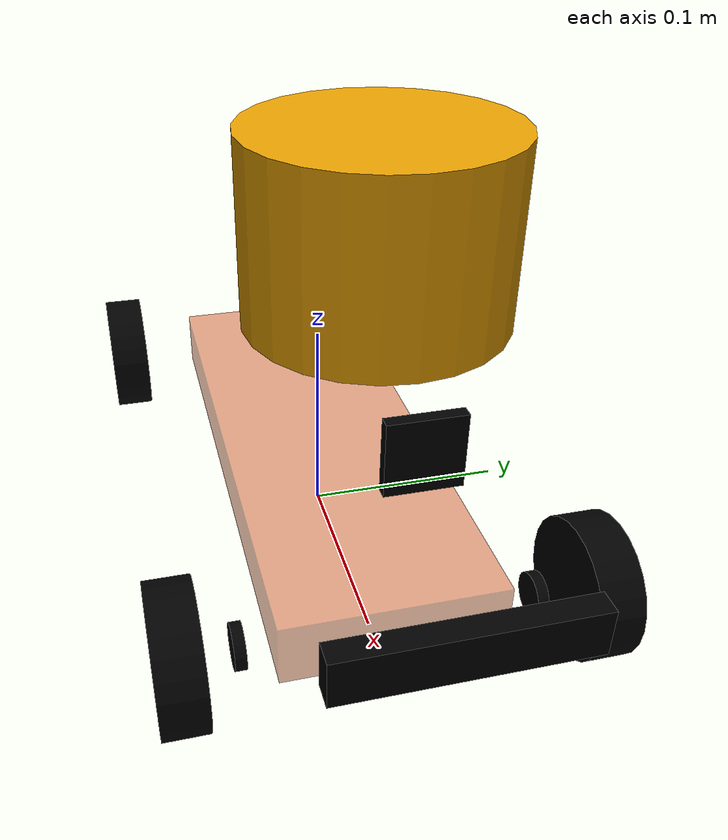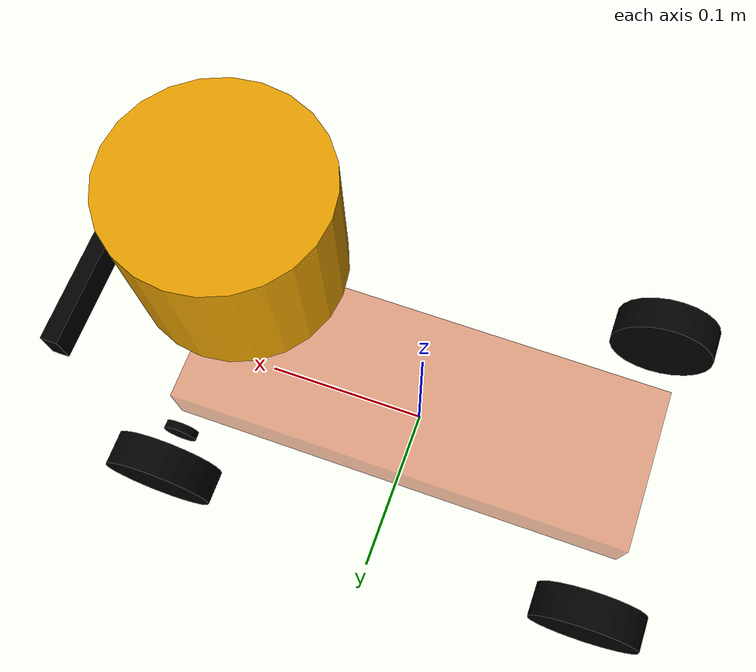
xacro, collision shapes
<?xml version="1.0" encoding="utf-8"?>

<robot name="racebot" xmlns:xacro="http://www.ros.org/wiki/xacro">

    <xacro:include filename="$(find urdf_learn_gazebo)/urdf/macros.xacro" />

    <xacro:include filename="$(find urdf_learn_gazebo)/velodyne_description/urdf/VLP-16.urdf.xacro" />

    <joint name="lidar_joint" type="fixed">
      <origin xyz="0.093603 0 0.12377" />
      <axis xyz="0 0 1" />
      <parent link="base_link"/>
      <child link="velodyne_base_link"/>
    </joint>

    <xacro:VLP-16/>

    <robot_base_gazebo/>

    <link name="base_footprint">
    </link>

    <link name="base_link">
        <visual>
            <geometry>
                <box size="0.28 0.1 0.03"/>
            </geometry>
            <origin xyz="0 0 0" rpy="0 0 0" />
            <material name="yellow">
                <color rgba="0.8 0.3 0.1 0.5" />
            </material>
        </visual>
        <collision>
            <geometry>
                <box size="0.28 0.1 0.03" />
            </geometry>
            <origin xyz="0.0 0.0 0.0" rpy="0.0 0.0 0.0" />
        </collision>

    </link>

    <joint name="base_link2base_footprint" type="fixed">
        <parent link="base_footprint" />
        <child link="base_link"/>
        <origin xyz="0 0 0.032" rpy="0 0 0" />
    </joint>

    <link name="base_inertia">
    <inertial>
            <origin xyz="0 0 0" />
            <mass value="4" />
            <inertia ixx="0.0264" ixy="0" ixz="0" iyy="0.0294" iyz="0" izz="0.00364" />
        </inertial>
    </link>

    <joint name="chassis_inertia_joint" type="fixed">
    <origin xyz="0 0 0" rpy="0 0 0" />
    <parent link="base_link" />
    <child link="base_inertia" />
  </joint>

    <link name="left_steering_hinge">
        <visual>
            <geometry>
                <cylinder radius="0.01" length="0.005" />
            </geometry>
            <origin xyz="0 0 0" rpy="1.57 0 0" />
            <material name="black">
                <color rgba="0.0 0.0 0.0 1.0" />
            </material>
        </visual>
        <collision>
            <geometry>
                <cylinder radius="0.01" length="0.005" />
            </geometry>
            <origin xyz="0.0 0.0 0.0" rpy="1.57 0.0 0.0" />
        </collision>
        <inertial>
            <origin xyz="0 0 0" />
            <mass value="0.5" />
            <inertia ixx="1.35E-05" ixy="0" ixz="0" iyy="1.35E-05" iyz="0" izz="2.5E-05" />
        </inertial>
    </link>

    <joint name="left_steering_hinge_joint" type="revolute">
        <parent link="base_link" />
        <child link="left_steering_hinge" />
        <origin xyz="0.13 0.065 0" />
        <axis xyz="0 0 1" />
        <limit lower="-0.6" upper="0.6" effort="5.0" velocity="1000.0"/>
    </joint>
    <xacro:steering_hinge_transmission name="left_steering_hinge" />

    <link name="left_front_wheel">
        <visual>
            <geometry>
                <cylinder radius="0.033" length="0.02" />
            </geometry>
            <origin xyz="0 0 0" rpy="1.57 0 0" />
            <material name="black">
                <color rgba="0.0 0.0 0.0 1.0" />
            </material>
        </visual>
        <collision>
            <geometry>
                <cylinder radius="0.032" length="0.02" />
            </geometry>
            <origin xyz="0.0 0.0 0.0" rpy="1.57 0.0 0.0" />
        </collision>
        <inertial>
            <origin xyz="0 0 0" />
            <mass value="2.0" />
            <inertia ixx="6.64E-04" ixy="0" ixz="0" iyy="6.64E-04" iyz="0" izz="1.02E-03" />
        </inertial>
    </link>

    <joint name="left_front_wheel_joint" type="continuous">
        <parent link="left_steering_hinge" />
        <child link="left_front_wheel" />
        <origin xyz="0 0.025 0" />
        <axis xyz="0 1 0" />
        <limit effort="10" velocity="1000" />
    </joint>
     <xacro:wheel_transmission name="left_front_wheel" />

<link name="right_steering_hinge">
        <visual>
            <geometry>
                 <cylinder radius="0.01" length="0.005" />
            </geometry>
            <origin xyz="0 0 0" rpy="1.57 0 0" />
            <material name="black">
                <color rgba="0.0 0.0 0.0 1.0" />
            </material>
        </visual>
        <collision>
            <geometry>
                <cylinder radius="0.01" length="0.005" />
            </geometry>
            <origin xyz="0.0 0.0 0.0" rpy="1.57 0.0 0.0" />
        </collision>
        <inertial>
            <origin xyz="0 0 0" />
            <mass value="0.5" />
            <inertia ixx="1.35E-05" ixy="0" ixz="0" iyy="1.35E-05" iyz="0" izz="2.5E-05" />
        </inertial>
    </link>

    <joint name="right_steering_hinge_joint" type="revolute">
        <parent link="base_link" />
        <child link="right_steering_hinge" />
        <origin xyz="0.13 -0.065 0" />
        <axis xyz="0 0 1" />
        <limit lower="-0.6" upper="0.6" effort="5.0" velocity="1000.0"/>
    </joint>
    <xacro:steering_hinge_transmission name="right_steering_hinge" />

     <link name="right_front_wheel">
        <visual>
            <geometry>
                <cylinder radius="0.033" length="0.02" />
            </geometry>
            <origin xyz="0 0 0" rpy="1.57 0 0" />
            <material name="black">
                <color rgba="0.0 0.0 0.0 1.0" />
            </material>
        </visual>
        <collision>
            <geometry>
                <cylinder radius="0.032" length="0.02" />
            </geometry>
            <origin xyz="0.0 0.0 0.0" rpy="1.57 0.0 0.0" />
        </collision>
        <inertial>
            <origin xyz="0 0 0" />
            <mass value="2.0" />
            <inertia ixx="6.64E-04" ixy="0" ixz="0" iyy="6.64E-04" iyz="0" izz="1.02E-03" />
        </inertial>
    </link>

    <joint name="right_front_wheel_joint" type="continuous">
        <parent link="right_steering_hinge" />
        <child link="right_front_wheel" />
        <origin xyz="0 -0.025 0" />
        <axis xyz="0 1 0" />
        <limit effort="10" velocity="1000" />
    </joint>
    <xacro:wheel_transmission name="right_front_wheel" />

    <link name="left_rear_wheel">
        <visual>
            <geometry>
                <cylinder radius="0.032" length="0.02" />
            </geometry>
            <origin xyz="0 0 0" rpy="1.57 0 0" />
            <material name="black">
                <color rgba="0.0 0.0 0.0 1.0" />
            </material>
        </visual>
        <collision>
            <geometry>
                <cylinder radius="0.032" length="0.02" />
            </geometry>
            <origin xyz="0.0 0.0 0.0" rpy="1.57 0.0 0.0" />
        </collision>
        <inertial>
            <origin xyz="0 0 0" />
            <mass value="2.0" />
            <inertia ixx="6.64E-04" ixy="0" ixz="0" iyy="6.64E-04" iyz="0" izz="1.02E-03" />
        </inertial>
    </link>

    <joint name="left_rear_wheel_joint" type="continuous">
        <parent link="base_link" />
        <child link="left_rear_wheel" />
        <origin xyz="-0.13 0.09 0" />
        <axis xyz="0 1 0" />
        <limit effort="10" velocity="1000" />
    </joint>
    <xacro:wheel_transmission name="left_rear_wheel" />

    <link name="right_rear_wheel">
        <visual>
            <geometry>
                <cylinder radius="0.032" length="0.02" />
            </geometry>
            <origin xyz="0 0 0" rpy="1.57 0 0" />
            <material name="black">
                <color rgba="0.0 0.0 0.0 1.0" />
            </material>
        </visual>
        <collision>
            <geometry>
                <cylinder radius="0.032" length="0.02" />
            </geometry>
            <origin xyz="0.0 0.0 0.0" rpy="1.57 0.0 0.0" />
        </collision>
        <inertial>
            <origin xyz="0 0 0" />
            <mass value="2.0" />
            <inertia ixx="6.64E-04" ixy="0" ixz="0" iyy="6.64E-04" iyz="0" izz="1.02E-03" />
        </inertial>
    </link>

    <joint name="right_rear_wheel_joint" type="continuous">
        <parent link="base_link" />
        <child link="right_rear_wheel" />
        <origin xyz="-0.13 -0.09 0" />
        <axis xyz="0 1 0" />
        <limit effort="10" velocity="1000" />
    </joint>
    <xacro:wheel_transmission name="right_rear_wheel" />

    <link name="camera">
        <visual>
            <geometry>
                <box size="0.005 0.03 0.03"/>
            </geometry>
            <origin xyz="0 0 0" rpy="0 0 0" />
            <material name="black">
                <color rgba="0.0 0.0 0.0 1.0" />
            </material>
        </visual>
        <collision>
            <geometry>
                <box size="0.005 0.03 0.03"/>
            </geometry>
            <origin xyz="0.0 0.0 0.0" rpy="0.0 0.0 0.0" />
        </collision>
        <inertial>
            <origin xyz="0 0 0" />
            <mass value="0.05" />
            <inertia ixx="6.64E-04" ixy="0" ixz="0" iyy="6.64E-04" iyz="0" izz="1.02E-03" />
        </inertial>
    </link>

    <joint name="camera_joint" type="fixed">
        <parent link="base_link" />
        <child link="camera" />
        <origin xyz="0.14851 0.0022137 0.0975" />
        <axis xyz="0 0 1" />
    </joint>

    <link name="real_sense">
        <visual>
            <geometry>
                <box size="0.01 0.1 0.02"/>
            </geometry>
            <origin xyz="0 0 0" rpy="0 0 0" />
            <material name="black">
                <color rgba="0.0 0.0 0.0 1.0" />
            </material>
        </visual>
        <collision>
            <geometry>
                <box size="0.01 0.1 0.02"/>
            </geometry>
            <origin xyz="0.0 0.0 0.0" rpy="0.0 0.0 0.0" />
        </collision>
        <inertial>
            <origin xyz="0 0 0" />
            <mass value="0.05" />
            <inertia ixx="6.64E-04" ixy="0" ixz="0" iyy="6.64E-04" iyz="0" izz="1.02E-03" />
        </inertial>
    </link>

    <joint name="realsense_joint" type="fixed">
        <parent link="base_link" />
        <child link="real_sense" />
        <origin xyz="0.19864 0.0038046 0.052021" />
        <axis xyz="0 0 1" />
    </joint>

    <link name="realsense_depth"/>
    <joint name="realsense_depth_joint" type="fixed">
            <origin xyz="0 0 0" rpy="-1.5708 0 -1.5708"/>
            <parent link="real_sense"/>
            <child link="realsense_depth"/>
    </joint>

  <xacro:include filename="$(find urdf_learn_gazebo)/urdf/racecar.gazebo" />

</robot>

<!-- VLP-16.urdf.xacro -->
<robot xmlns:xacro="http://www.ros.org/wiki/xacro" name="VLP-16">
  <xacro:property name="M_PI" value="3.1415926535897931" />
  <xacro:macro name="VLP-16" params="parent:=base_link name:=velodyne topic:=/velodyne_points organize_cloud:=false hz:=10 lasers:=16 samples:=1875 collision_range:=0.3 min_range:=0.9 max_range:=130.0 noise:=0.008 min_angle:=-${M_PI} max_angle:=${M_PI} gpu:=true">

    <link name="${name}_base_link">
      <inertial>
        <mass value="0.83"/>
        <origin xyz="0 0 0.03585"/>
        <inertia ixx="${(0.83 * (3.0*0.0516*0.0516 + 0.0717*0.0717)) / 12.0}" ixy="0" ixz="0"
          iyy="${(0.83 * (3.0*0.0516*0.0516 + 0.0717*0.0717)) / 12.0}" iyz="0"
          izz="${0.5 * 0.83 * (0.0516*0.0516)}"/>
      </inertial>
      <visual>
        <geometry>
          <mesh filename="package://velodyne_description/meshes/VLP16_base_1.dae" />
        </geometry>
      </visual>
      <visual>
        <geometry>
          <mesh filename="package://velodyne_description/meshes/VLP16_base_2.dae" />
        </geometry>
      </visual>
      <collision>
        <origin rpy="0 0 0" xyz="0 0 0.03585"/>
        <geometry>
          <cylinder radius="0.0516" length="0.0717"/>
        </geometry>
      </collision>
    </link>

    <joint name="${name}_base_scan_joint" type="fixed" >
      <origin xyz="0 0 0.0377" rpy="0 0 0" />
      <parent link="${name}_base_link" />
      <child link="${name}"/>
    </joint>

    <link name="${name}">
      <inertial>
        <mass value="0.01"/>
        <origin xyz="0 0 0"/>
        <inertia ixx="1e-7" ixy="0" ixz="0" iyy="1e-7" iyz="0" izz="1e-7"/>
      </inertial>
      <visual>
        <origin xyz="0 0 -0.0377" />
        <geometry>
          <mesh filename="package://velodyne_description/meshes/VLP16_scan.dae" />
        </geometry>
      </visual>
    </link>

    <!-- Gazebo requires the velodyne_gazebo_plugins package -->
    <gazebo reference="${name}">
      <xacro:if value="${gpu}">
        <sensor type="gpu_ray" name="${name}-VLP16">
          <pose>0 0 0 0 0 0</pose>
          <visualize>false</visualize>
          <update_rate>${hz}</update_rate>
          <ray>
            <scan>
              <horizontal>
                <samples>${samples}</samples>
                <resolution>1</resolution>
                <min_angle>${min_angle}</min_angle>
                <max_angle>${max_angle}</max_angle>
              </horizontal>
              <vertical>
                <samples>${lasers}</samples>
                <resolution>1</resolution>
                <min_angle>-${15.0*M_PI/180.0}</min_angle>
                <max_angle> ${15.0*M_PI/180.0}</max_angle>
              </vertical>
            </scan>
            <range>
              <min>${collision_range}</min>
              <max>${max_range+1}</max>
              <resolution>0.001</resolution>
            </range>
            <noise>
              <type>gaussian</type>
              <mean>0.0</mean>
              <stddev>0.0</stddev>
            </noise>
          </ray>
          <plugin name="gazebo_ros_laser_controller" filename="libgazebo_ros_velodyne_gpu_laser.so">
            <topicName>${topic}</topicName>
            <frameName>${name}</frameName>
            <organize_cloud>${organize_cloud}</organize_cloud>
            <min_range>${min_range}</min_range>
            <max_range>${max_range}</max_range>
            <gaussianNoise>${noise}</gaussianNoise>
          </plugin>
        </sensor>
      </xacro:if>
      <xacro:unless value="${gpu}">
        <sensor type="ray" name="${name}-VLP16">
          <pose>0 0 0 0 0 0</pose>
          <visualize>false</visualize>
          <update_rate>${hz}</update_rate>
          <ray>
            <scan>
              <horizontal>
                <samples>${samples}</samples>
                <resolution>1</resolution>
                <min_angle>${min_angle}</min_angle>
                <max_angle>${max_angle}</max_angle>
              </horizontal>
              <vertical>
                <samples>${lasers}</samples>
                <resolution>1</resolution>
                <min_angle>-${15.0*M_PI/180.0}</min_angle>
                <max_angle> ${15.0*M_PI/180.0}</max_angle>
              </vertical>
            </scan>
            <range>
              <min>${collision_range}</min>
              <max>${max_range+1}</max>
              <resolution>0.001</resolution>
            </range>
            <noise>
              <type>gaussian</type>
              <mean>0.0</mean>
              <stddev>0.0</stddev>
            </noise>
          </ray>
          <plugin name="gazebo_ros_laser_controller" filename="libgazebo_ros_velodyne_laser.so">
            <topicName>${topic}</topicName>
            <frameName>${name}</frameName>
            <organize_cloud>${organize_cloud}</organize_cloud>
            <min_range>${min_range}</min_range>
            <max_range>${max_range}</max_range>
            <gaussianNoise>${noise}</gaussianNoise>
          </plugin>
        </sensor>
      </xacro:unless>
    </gazebo>

  </xacro:macro>
</robot>
